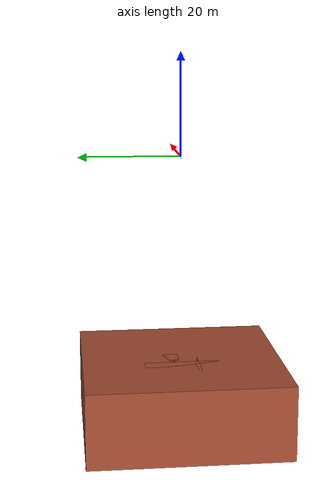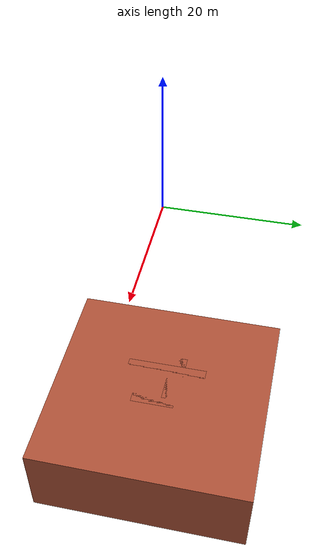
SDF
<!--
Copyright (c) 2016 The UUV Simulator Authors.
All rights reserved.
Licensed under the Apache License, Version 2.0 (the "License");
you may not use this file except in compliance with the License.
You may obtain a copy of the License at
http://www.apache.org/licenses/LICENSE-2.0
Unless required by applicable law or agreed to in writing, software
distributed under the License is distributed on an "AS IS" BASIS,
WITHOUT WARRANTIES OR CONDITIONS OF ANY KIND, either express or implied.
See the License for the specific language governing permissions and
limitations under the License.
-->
<sdf version="1.4">
 <world name="oceans_waves">
  <physics name="default_physics" default="true" type="ode">
   <max_step_size>0.002</max_step_size>
   <real_time_factor>1</real_time_factor>
   <real_time_update_rate>500</real_time_update_rate>
  </physics>
  <scene>
   <ambient>0.01 0.01 0.01 1.0</ambient>
   <sky><clouds><speed>12</speed></clouds></sky>
   <shadows>1</shadows>
  </scene>
  <spherical_coordinates>
   <latitude_deg>56.71897669633431</latitude_deg>
   <longitude_deg>3.515625</longitude_deg>
  </spherical_coordinates>
  <light type="directional" name="sun1">
   <pose>50 0 150 0 0 0</pose>
   <diffuse>1 1 1 1</diffuse>
   <specular>.1 .1 .1 1</specular>
   <direction>0.3 0.3 -1</direction>
   <cast_shadows>false</cast_shadows>
  </light>
  <light type="directional" name="sun_diffuse">
   <pose>-50 0 -150 0 0 0</pose>
   <diffuse>0.6 0.6 0.6 1</diffuse>
   <specular>0 0 0 1</specular>
   <direction>-0.3 -0.3 -1</direction>
   <cast_shadows>false</cast_shadows>
  </light>
  <include><uri>model://ned_frame</uri></include>
  <include><uri>model://pipe</uri><pose>0 0 -50 0 0 0</pose></include>
  <plugin name="underwater_current_plugin" filename="libuuv_underwater_current_ros_plugin.so">
   <namespace>hydrodynamics</namespace>
   <constant_current>
    <topic>current_velocity</topic>
    <velocity><mean>0</mean><min>0</min><max>5</max><mu>0.0</mu><noiseAmp>0.0</noiseAmp></velocity>
    <horizontal_angle>
     <mean>0</mean>
     <min>-3.141592653589793238</min>
     <max>3.141592653589793238</max>
     <mu>0.0</mu>
     <noiseAmp>0.0</noiseAmp>
    </horizontal_angle>
    <vertical_angle>
     <mean>0</mean>
     <min>-3.141592653589793238</min>
     <max>3.141592653589793238</max>
     <mu>0.0</mu>
     <noiseAmp>0.0</noiseAmp>
    </vertical_angle>
   </constant_current>
  </plugin>
  <plugin name="sc_interface" filename="libuuv_sc_ros_interface_plugin.so"/>
 </world>
</sdf>

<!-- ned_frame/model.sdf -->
<sdf version='1.5'>
    <model name="world_ned">

      <pose>0 0 0 0 0 0</pose>
      <static>true</static>

      <link name="world_ned">
        <gravity>0</gravity>
        <pose>0 0 0 3.14159265359 0 1.5707963267948966</pose>

        <visual name="N_visual">
          <pose>0.25 0 0 1.5707963267948966 0 1.5707963267948966</pose>
          <geometry>
            <cylinder>
              <radius>0.01</radius>
              <length>0.5</length>
            </cylinder>
          </geometry>
          <material>
            <script>
              <uri>file://media/materials/scripts/gazebo.material</uri>
              <name>Gazebo/Red</name>
            </script>
          </material>
        </visual>

        <visual name="E_visual">
          <pose>0 0.25 0 1.5707963267948966 0 0</pose>
          <geometry>
            <cylinder>
              <radius>0.01</radius>
              <length>0.5</length>
            </cylinder>
          </geometry>
          <material>
            <script>
              <uri>file://media/materials/scripts/gazebo.material</uri>
              <name>Gazebo/Green</name>
            </script>
          </material>
        </visual>

        <visual name="D_visual">
          <pose>0 0 0.25 0 0 0</pose>
          <geometry>
            <cylinder>
              <radius>0.01</radius>
              <length>0.5</length>
            </cylinder>
          </geometry>
          <material>
            <script>
              <uri>file://media/materials/scripts/gazebo.material</uri>
              <name>Gazebo/Blue</name>
            </script>
          </material>
        </visual>
      </link>
    </model>
</sdf>

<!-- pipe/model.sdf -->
<sdf version='1.6'>
  <model name='pipe'>
    <pose frame=''>0.655 -2.40011 0 0 -0 0</pose>
    <link name='Wall_0'>
      <collision name='Wall_0_Collision'>
        <geometry>
          <box>
            <size>40 40 15</size>
          </box>
        </geometry>
        <pose frame=''>0 0 1.25 0 -0 0</pose>
      </collision>
      <visual name='Wall_0_Visual'>
        <pose frame=''>0 0 1.25 0 -0 0</pose>
        <geometry>
          <box>
            <size>40 40 15</size>
          </box>
        </geometry>
        <material>
          <script>
            <uri>file://media/materials/scripts/gazebo.material</uri>
            <name>Gazebo/Bricks</name>
          </script>
          <ambient>0.996078 0.47451 0.0196078 1</ambient>
        </material>
        <meta>
          <layer>0</layer>
        </meta>
      </visual>
      <pose frame=''>1 -0.059891 0 0 -0 0</pose>
    </link>
    <link name='Wall_1'>
      <collision name='Wall_1_Collision'>
        <geometry>
          <box>
            <size>8 3 15</size>
          </box>
        </geometry>
        <pose frame=''>0 0 1.25 0 -0 0</pose>
      </collision>
      <visual name='Wall_1_Visual'>
        <pose frame=''>0 0 1.25 0 -0 0</pose>
        <geometry>
          <box>
            <size>8 3 15</size>
          </box>
        </geometry>
        <material>
          <script>
            <uri>file://media/materials/scripts/gazebo.material</uri>
            <name>Gazebo/Bricks</name>
          </script>
          <ambient>0.996078 0.47451 0.0196078 1</ambient>
        </material>
        <meta>
          <layer>0</layer>
        </meta>
      </visual>
      <pose frame=''>3.425 -0.984891 0 0 -0 -1.5708</pose>
    </link>
    <link name='Wall_2'>
      <collision name='Wall_2_Collision'>
        <geometry>
          <box>
            <size>15 3 15</size>
          </box>
        </geometry>
        <pose frame=''>0 0 1.25 0 -0 0</pose>
      </collision>
      <visual name='Wall_2_Visual'>
        <pose frame=''>0 0 1.25 0 -0 0</pose>
        <geometry>
          <box>
            <size>15 3 15</size>
          </box>
        </geometry>
        <material>
          <script>
            <uri>file://media/materials/scripts/gazebo.material</uri>
            <name>Gazebo/Bricks</name>
          </script>
          <ambient>0.996078 0.47451 0.0196078 1</ambient>
        </material>
        <meta>
          <layer>0</layer>
        </meta>
      </visual>
      <pose frame=''>0 -1.91989 0 0 -0 -3.13867</pose>
    </link>
    <link name='Wall_3'>
      <collision name='Wall_3_Collision'>
        <geometry>
          <box>
            <size>15 3 15</size>
          </box>
        </geometry>
        <pose frame=''>0 0 1.25 0 -0 0</pose>
      </collision>
      <visual name='Wall_3_Visual'>
        <pose frame=''>0 0 1.25 0 -0 0</pose>
        <geometry>
          <box>
            <size>15 3 15</size>
          </box>
        </geometry>
        <material>
          <script>
            <uri>file://media/materials/scripts/gazebo.material</uri>
            <name>Gazebo/Bricks</name>
          </script>
          <ambient>0.996078 0.47451 0.0196078 1</ambient>
        </material>
        <meta>
          <layer>0</layer>
        </meta>
      </visual>
      <pose frame=''>-3.425 0.005109 0 0 -0 1.5708</pose>
    </link>
    <link name='Wall_4'>
      <collision name='Wall_4_Collision'>
        <geometry>
          <box>
            <size>10 3 15</size>
          </box>
        </geometry>
        <pose frame=''>0 0 1.25 0 -0 0</pose>
      </collision>
      <visual name='Wall_4_Visual'>
        <pose frame=''>0 0 1.25 0 -0 0</pose>
        <geometry>
          <box>
            <size>10 3 15</size>
          </box>
        </geometry>
        <material>
          <script>
            <uri>file://media/materials/scripts/gazebo.material</uri>
            <name>Gazebo/Bricks</name>
          </script>
          <ambient>0.996078 0.47451 0.0196078 1</ambient>
        </material>
        <meta>
          <layer>0</layer>
        </meta>
      </visual>
      <pose frame=''>-2 1.93011 0 0 -0 0</pose>
    </link>
    <static>1</static>
  </model>
</sdf>
